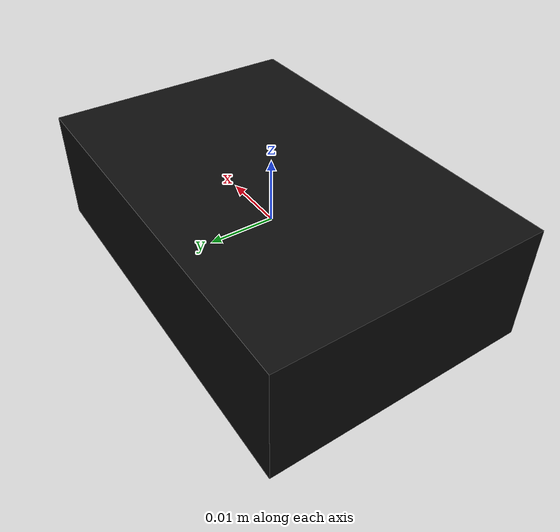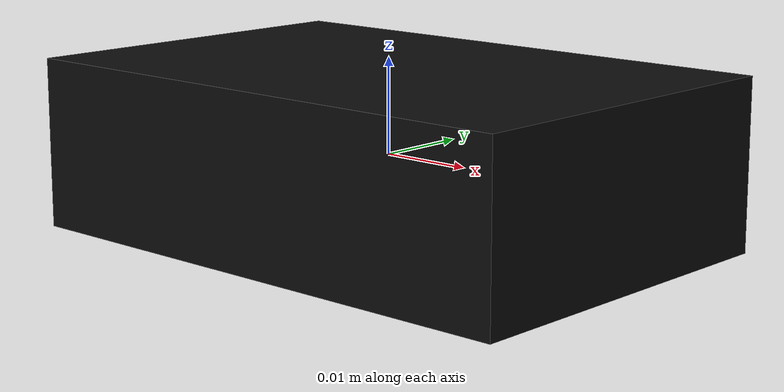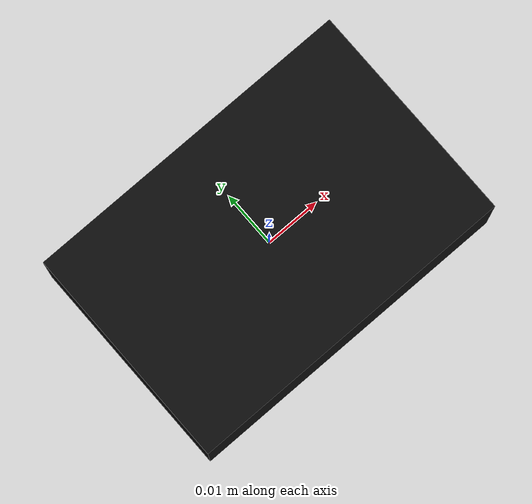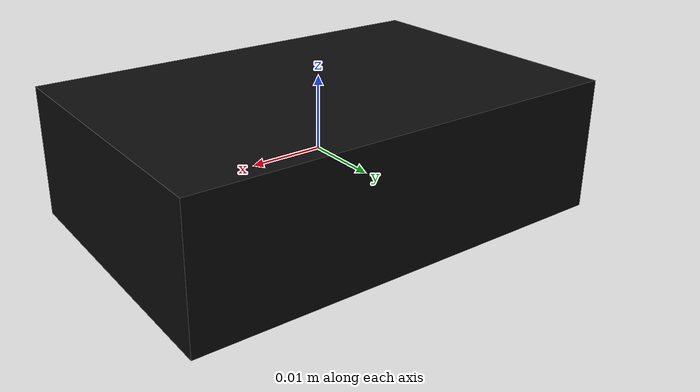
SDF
<?xml version="1.0"?>
<sdf version="1.6">
  <model name="gps">
    <link name="link">
      <pose>0 0 0 0 0 0</pose>
      <inertial>
        <mass>0.01</mass>
        <inertia>
          <ixx>0.00001</ixx>
          <iyy>0.00001</iyy>
          <izz>0.00001</izz>
        </inertia>
      </inertial>
      <visual name="visual">
        <geometry>
          <box>
            <size>0.06 0.04 0.018</size>
          </box>
        </geometry>
        <material>
          <ambient>0.05 0.05 0.05 1</ambient>
          <diffuse>0.05 0.05 0.05 1</diffuse>
        </material>
      </visual>
      <!-- 保留离线外观的同时，必须向 PX4 Gazebo MAVLink 接口发布 /gps。 -->
      <sensor name="gps" type="gps">
        <pose>0 0 0 0 0 0</pose>
        <update_rate>5.0</update_rate>
        <always_on>true</always_on>
        <visualize>false</visualize>
        <plugin name="gps_plugin" filename="libgazebo_gps_plugin.so">
          <robotNamespace/>
          <gpsNoise>true</gpsNoise>
          <gpsXYRandomWalk>2.0</gpsXYRandomWalk>
          <gpsZRandomWalk>4.0</gpsZRandomWalk>
          <gpsXYNoiseDensity>2.0e-4</gpsXYNoiseDensity>
          <gpsZNoiseDensity>4.0e-4</gpsZNoiseDensity>
          <gpsVXYNoiseDensity>0.2</gpsVXYNoiseDensity>
          <gpsVZNoiseDensity>0.4</gpsVZNoiseDensity>
        </plugin>
      </sensor>
    </link>
  </model>
</sdf>
